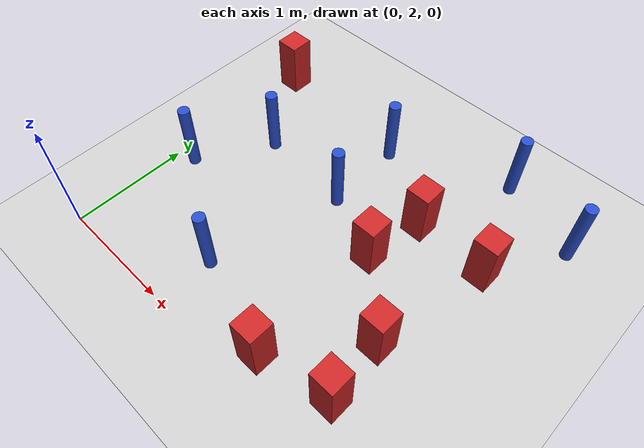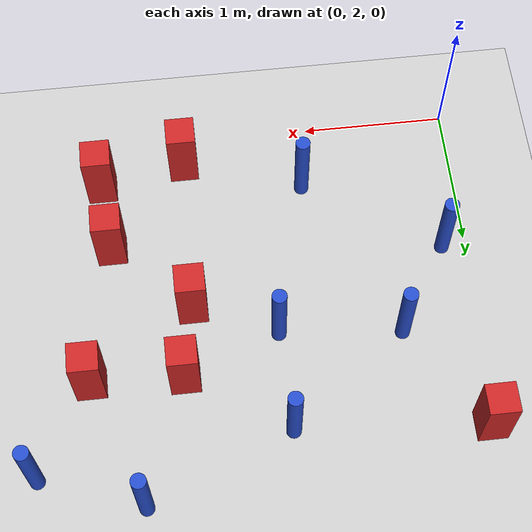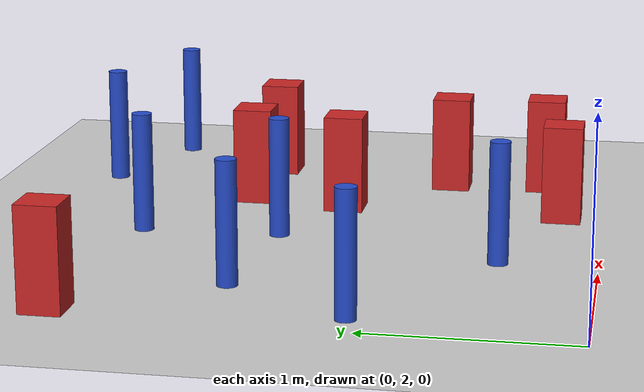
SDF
<sdf version="1.6">
 <world name="default">
  <model name="ground_plane">
   <static>1</static>
   <link name="link">
    <collision name="collision">
     <geometry><plane><normal>0 0 1</normal><size>100 100</size></plane></geometry>
     <surface><friction><ode><mu>100</mu><mu2>50</mu2></ode></friction></surface>
    </collision>
    <visual name="visual">
     <cast_shadows>0</cast_shadows>
     <geometry><plane><normal>0 0 1</normal><size>100 100</size></plane></geometry>
     <material>
      <ambient>1.0 1.0 1.0 1.0</ambient>
      <diffuse>0.8 0.8 0.8 1.0</diffuse>
      <specular>0.01 0.01 0.01 1.000000</specular>
     </material>
    </visual>
   </link>
  </model>
  <model name="square_post_obstacle2">
   <static>true</static>
   <pose>2.45403011501 2.84470592228 -6.11067671241e-07 -5.50515727128e-06 -8.79689657224e-07 2.37013304536e-05</pose>
   <link name="link">
    <pose>0 0 0.25 0 -0 0</pose>
    <inertial>
     <mass>100</mass>
     <inertia>
      <ixx>0.166667</ixx>
      <ixy>0</ixy>
      <ixz>0</ixz>
      <iyy>0.166667</iyy>
      <iyz>0</iyz>
      <izz>0.166667</izz>
     </inertia>
    </inertial>
    <collision name="collision"><geometry><box><size>.2 .2 .5</size></box></geometry></collision>
    <visual name="visual">
     <geometry><box><size>.2 .2 .5</size></box></geometry>
     <material>
      <script><name>Gazebo/Red</name><uri>file://media/materials/scripts/gazebo.material</uri></script>
     </material>
    </visual>
   </link>
  </model>
  <model name="square_post_obstacle9">
   <static>true</static>
   <pose>2.64092734206 3.82460072823 -6.11067671241e-07 -5.50515727128e-06 -8.79689657224e-07 2.37013304536e-05</pose>
   <link name="link">
    <pose>0 0 0.25 0 -0 0</pose>
    <inertial>
     <mass>100</mass>
     <inertia>
      <ixx>0.166667</ixx>
      <ixy>0</ixy>
      <ixz>0</ixz>
      <iyy>0.166667</iyy>
      <iyz>0</iyz>
      <izz>0.166667</izz>
     </inertia>
    </inertial>
    <collision name="collision"><geometry><box><size>.2 .2 .5</size></box></geometry></collision>
    <visual name="visual">
     <geometry><box><size>.2 .2 .5</size></box></geometry>
     <material>
      <script><name>Gazebo/Red</name><uri>file://media/materials/scripts/gazebo.material</uri></script>
     </material>
    </visual>
   </link>
  </model>
  <model name="pole_obstacle9">
   <static>true</static>
   <pose>0.166897559963 3.05602028141 -9.4761961606e-06 5.49618799729e-07 2.36310413998e-07 -1.55090534824e-07</pose>
   <link name="link">
    <pose>0 0 0.3 0 -0 0</pose>
    <inertial>
     <mass>1</mass>
     <inertia><ixx>0.145833</ixx><ixy>0</ixy><ixz>0</ixz><iyy>0.145833</iyy><iyz>0</iyz><izz>0.125</izz></inertia>
    </inertial>
    <collision name="collision">
     <geometry><cylinder><radius>0.05</radius><length>.6</length></cylinder></geometry>
    </collision>
    <visual name="visual">
     <geometry><cylinder><radius>0.05</radius><length>.6</length></cylinder></geometry>
     <material>
      <script><name>Gazebo/Blue</name><uri>file://media/materials/scripts/gazebo.material</uri></script>
     </material>
    </visual>
   </link>
  </model>
  <model name="pole_obstacle27">
   <static>true</static>
   <pose>1.35018914964 4.2849601545 -9.47619616065e-06 5.49618799737e-07 2.36310414061e-07 -1.550905348e-07</pose>
   <link name="link">
    <pose>0 0 0.3 0 -0 0</pose>
    <inertial>
     <mass>1</mass>
     <inertia><ixx>0.145833</ixx><ixy>0</ixy><ixz>0</ixz><iyy>0.145833</iyy><iyz>0</iyz><izz>0.125</izz></inertia>
    </inertial>
    <collision name="collision">
     <geometry><cylinder><radius>0.05</radius><length>.6</length></cylinder></geometry>
    </collision>
    <visual name="visual">
     <geometry><cylinder><radius>0.05</radius><length>.6</length></cylinder></geometry>
     <material>
      <script><name>Gazebo/Blue</name><uri>file://media/materials/scripts/gazebo.material</uri></script>
     </material>
    </visual>
   </link>
  </model>
  <model name="pole_obstacle50">
   <static>true</static>
   <pose>1.08501009627 2.47537777412 -9.47619616065e-06 5.49618799737e-07 2.36310414062e-07 -1.55090534798e-07</pose>
   <link name="link">
    <pose>0 0 0.3 0 -0 0</pose>
    <inertial>
     <mass>1</mass>
     <inertia><ixx>0.145833</ixx><ixy>0</ixy><ixz>0</ixz><iyy>0.145833</iyy><iyz>0</iyz><izz>0.125</izz></inertia>
    </inertial>
    <collision name="collision">
     <geometry><cylinder><radius>0.05</radius><length>.6</length></cylinder></geometry>
    </collision>
    <visual name="visual">
     <geometry><cylinder><radius>0.05</radius><length>.6</length></cylinder></geometry>
     <material>
      <script><name>Gazebo/Blue</name><uri>file://media/materials/scripts/gazebo.material</uri></script>
     </material>
    </visual>
   </link>
  </model>
  <model name="pole_obstacle61">
   <static>true</static>
   <pose>0.540656722937 3.66856565822 -9.47619616065e-06 5.49618799737e-07 2.36310414069e-07 -1.55090534796e-07</pose>
   <link name="link">
    <pose>0 0 0.3 0 -0 0</pose>
    <inertial>
     <mass>1</mass>
     <inertia><ixx>0.145833</ixx><ixy>0</ixy><ixz>0</ixz><iyy>0.145833</iyy><iyz>0</iyz><izz>0.125</izz></inertia>
    </inertial>
    <collision name="collision">
     <geometry><cylinder><radius>0.05</radius><length>.6</length></cylinder></geometry>
    </collision>
    <visual name="visual">
     <geometry><cylinder><radius>0.05</radius><length>.6</length></cylinder></geometry>
     <material>
      <script><name>Gazebo/Blue</name><uri>file://media/materials/scripts/gazebo.material</uri></script>
     </material>
    </visual>
   </link>
  </model>
  <model name="square_post_obstacle75">
   <static>true</static>
   <pose>1.9319834742 3.34947081611 -6.11067671241e-07 -5.50515727128e-06 -8.79689657224e-07 2.37013304536e-05</pose>
   <link name="link">
    <pose>0 0 0.25 0 -0 0</pose>
    <inertial>
     <mass>100</mass>
     <inertia>
      <ixx>0.166667</ixx>
      <ixy>0</ixy>
      <ixz>0</ixz>
      <iyy>0.166667</iyy>
      <iyz>0</iyz>
      <izz>0.166667</izz>
     </inertia>
    </inertial>
    <collision name="collision"><geometry><box><size>.2 .2 .5</size></box></geometry></collision>
    <visual name="visual">
     <geometry><box><size>.2 .2 .5</size></box></geometry>
     <material>
      <script><name>Gazebo/Red</name><uri>file://media/materials/scripts/gazebo.material</uri></script>
     </material>
    </visual>
   </link>
  </model>
  <model name="pole_obstacle95">
   <static>true</static>
   <pose>2.3296836631 4.69241225514 -9.47619616065e-06 5.49618799738e-07 2.3631041406e-07 -1.55090534801e-07</pose>
   <link name="link">
    <pose>0 0 0.3 0 -0 0</pose>
    <inertial>
     <mass>1</mass>
     <inertia><ixx>0.145833</ixx><ixy>0</ixy><ixz>0</ixz><iyy>0.145833</iyy><iyz>0</iyz><izz>0.125</izz></inertia>
    </inertial>
    <collision name="collision">
     <geometry><cylinder><radius>0.05</radius><length>.6</length></cylinder></geometry>
    </collision>
    <visual name="visual">
     <geometry><cylinder><radius>0.05</radius><length>.6</length></cylinder></geometry>
     <material>
      <script><name>Gazebo/Blue</name><uri>file://media/materials/scripts/gazebo.material</uri></script>
     </material>
    </visual>
   </link>
  </model>
  <model name="pole_obstacle123">
   <static>true</static>
   <pose>3.0117730331 4.44617282377 -9.47619616065e-06 5.49618799738e-07 2.3631041406e-07 -1.55090534801e-07</pose>
   <link name="link">
    <pose>0 0 0.3 0 -0 0</pose>
    <inertial>
     <mass>1</mass>
     <inertia><ixx>0.145833</ixx><ixy>0</ixy><ixz>0</ixz><iyy>0.145833</iyy><iyz>0</iyz><izz>0.125</izz></inertia>
    </inertial>
    <collision name="collision">
     <geometry><cylinder><radius>0.05</radius><length>.6</length></cylinder></geometry>
    </collision>
    <visual name="visual">
     <geometry><cylinder><radius>0.05</radius><length>.6</length></cylinder></geometry>
     <material>
      <script><name>Gazebo/Blue</name><uri>file://media/materials/scripts/gazebo.material</uri></script>
     </material>
    </visual>
   </link>
  </model>
  <model name="square_post_obstacle121">
   <static>true</static>
   <pose>0.0754675092042 4.38259778923 -6.11067671241e-07 -5.50515727128e-06 -8.79689657224e-07 2.37013304536e-05</pose>
   <link name="link">
    <pose>0 0 0.25 0 -0 0</pose>
    <inertial>
     <mass>100</mass>
     <inertia>
      <ixx>0.166667</ixx>
      <ixy>0</ixy>
      <ixz>0</ixz>
      <iyy>0.166667</iyy>
      <iyz>0</iyz>
      <izz>0.166667</izz>
     </inertia>
    </inertial>
    <collision name="collision"><geometry><box><size>.2 .2 .5</size></box></geometry></collision>
    <visual name="visual">
     <geometry><box><size>.2 .2 .5</size></box></geometry>
     <material>
      <script><name>Gazebo/Red</name><uri>file://media/materials/scripts/gazebo.material</uri></script>
     </material>
    </visual>
   </link>
  </model>
  <model name="square_post_obstacle161">
   <static>true</static>
   <pose>2.02180369748 3.84964573999 -6.11067671241e-07 -5.50515727128e-06 -8.79689657224e-07 2.37013304536e-05</pose>
   <link name="link">
    <pose>0 0 0.25 0 -0 0</pose>
    <inertial>
     <mass>100</mass>
     <inertia>
      <ixx>0.166667</ixx>
      <ixy>0</ixy>
      <ixz>0</ixz>
      <iyy>0.166667</iyy>
      <iyz>0</iyz>
      <izz>0.166667</izz>
     </inertia>
    </inertial>
    <collision name="collision"><geometry><box><size>.2 .2 .5</size></box></geometry></collision>
    <visual name="visual">
     <geometry><box><size>.2 .2 .5</size></box></geometry>
     <material>
      <script><name>Gazebo/Red</name><uri>file://media/materials/scripts/gazebo.material</uri></script>
     </material>
    </visual>
   </link>
  </model>
  <model name="square_post_obstacle178">
   <static>true</static>
   <pose>2.4980249438 2.33890018392 -6.11067671241e-07 -5.50515727128e-06 -8.79689657224e-07 2.37013304536e-05</pose>
   <link name="link">
    <pose>0 0 0.25 0 -0 0</pose>
    <inertial>
     <mass>100</mass>
     <inertia>
      <ixx>0.166667</ixx>
      <ixy>0</ixy>
      <ixz>0</ixz>
      <iyy>0.166667</iyy>
      <iyz>0</iyz>
      <izz>0.166667</izz>
     </inertia>
    </inertial>
    <collision name="collision"><geometry><box><size>.2 .2 .5</size></box></geometry></collision>
    <visual name="visual">
     <geometry><box><size>.2 .2 .5</size></box></geometry>
     <material>
      <script><name>Gazebo/Red</name><uri>file://media/materials/scripts/gazebo.material</uri></script>
     </material>
    </visual>
   </link>
  </model>
  <model name="square_post_obstacle192">
   <static>true</static>
   <pose>1.90811583865 2.21943227576 -6.11067671241e-07 -5.50515727128e-06 -8.79689657224e-07 2.37013304536e-05</pose>
   <link name="link">
    <pose>0 0 0.25 0 -0 0</pose>
    <inertial>
     <mass>100</mass>
     <inertia>
      <ixx>0.166667</ixx>
      <ixy>0</ixy>
      <ixz>0</ixz>
      <iyy>0.166667</iyy>
      <iyz>0</iyz>
      <izz>0.166667</izz>
     </inertia>
    </inertial>
    <collision name="collision"><geometry><box><size>.2 .2 .5</size></box></geometry></collision>
    <visual name="visual">
     <geometry><box><size>.2 .2 .5</size></box></geometry>
     <material>
      <script><name>Gazebo/Red</name><uri>file://media/materials/scripts/gazebo.material</uri></script>
     </material>
    </visual>
   </link>
  </model>
  <model name="pole_obstacle220">
   <static>true</static>
   <pose>1.37059814995 3.59217903381 -9.47619616065e-06 5.49618799737e-07 2.36310414062e-07 -1.55090534798e-07</pose>
   <link name="link">
    <pose>0 0 0.3 0 -0 0</pose>
    <inertial>
     <mass>1</mass>
     <inertia><ixx>0.145833</ixx><ixy>0</ixy><ixz>0</ixz><iyy>0.145833</iyy><iyz>0</iyz><izz>0.125</izz></inertia>
    </inertial>
    <collision name="collision">
     <geometry><cylinder><radius>0.05</radius><length>.6</length></cylinder></geometry>
    </collision>
    <visual name="visual">
     <geometry><cylinder><radius>0.05</radius><length>.6</length></cylinder></geometry>
     <material>
      <script><name>Gazebo/Blue</name><uri>file://media/materials/scripts/gazebo.material</uri></script>
     </material>
    </visual>
   </link>
  </model>
 </world>
</sdf>
